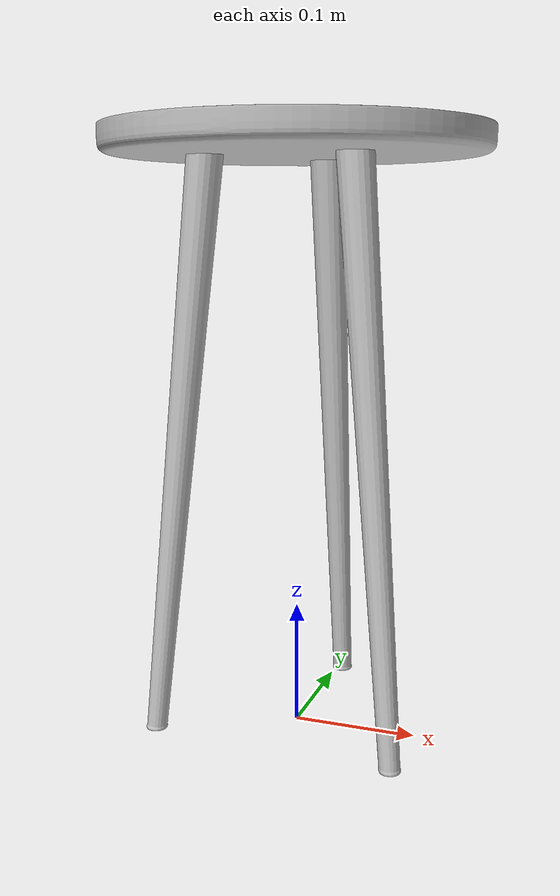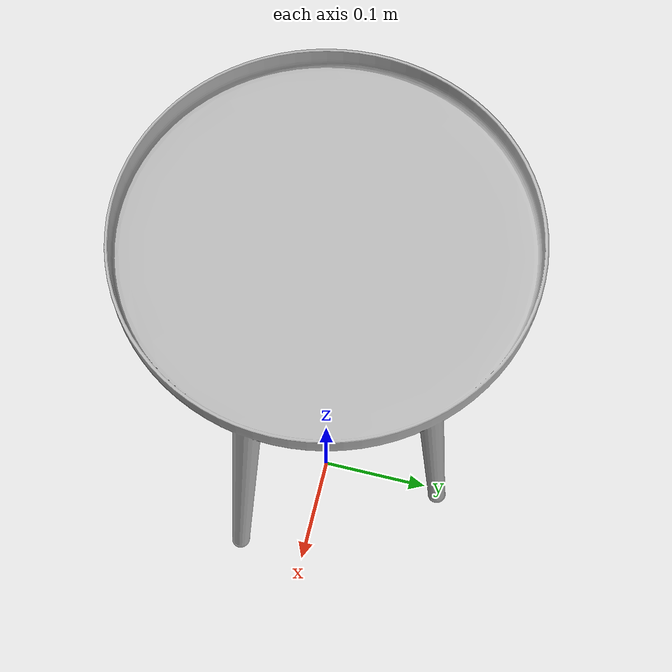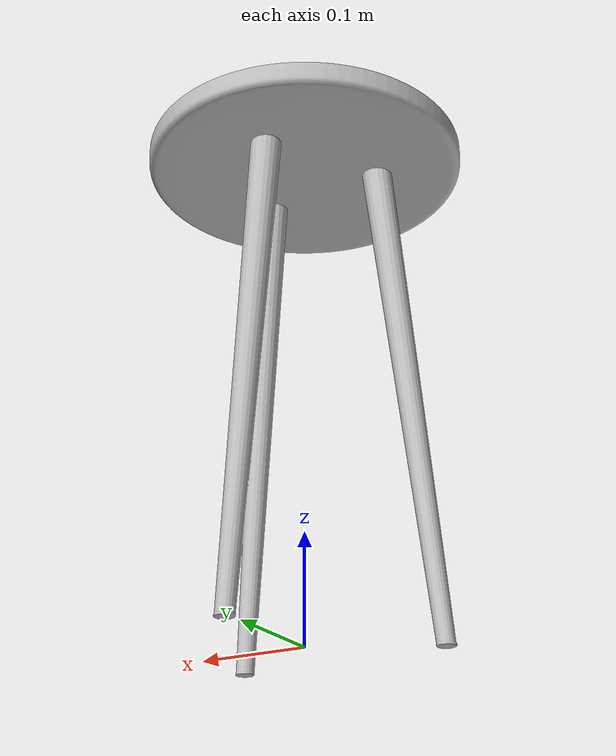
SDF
<sdf version="1.6">
	<model name="EndTables_O7753d9b39303_lod0">
		<link name="main_link">
			<visual name="visual_RootNode">
				<geometry>
					<mesh>
						<uri>model://EndTables_O7753d9b39303_lod0/meshes/visual_RootNode.dae</uri>
					</mesh>
				</geometry>
			</visual>
			<collision name="collision_RootNode_lod0_0">
				<geometry>
					<mesh>
						<uri>model://EndTables_O7753d9b39303_lod0/meshes/collision_RootNode_lod0_0.dae</uri>
					</mesh>
				</geometry>
			</collision>
		</link>
	</model>
</sdf>
